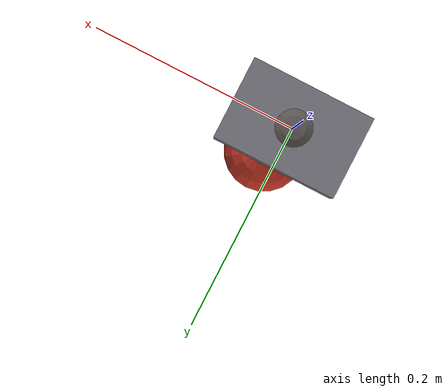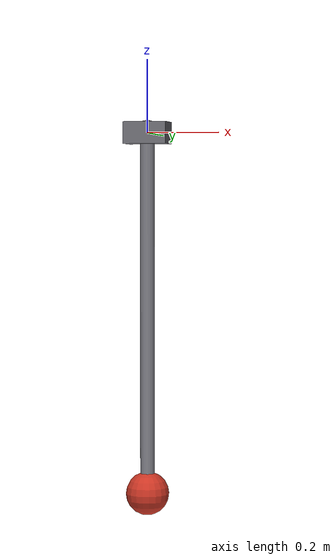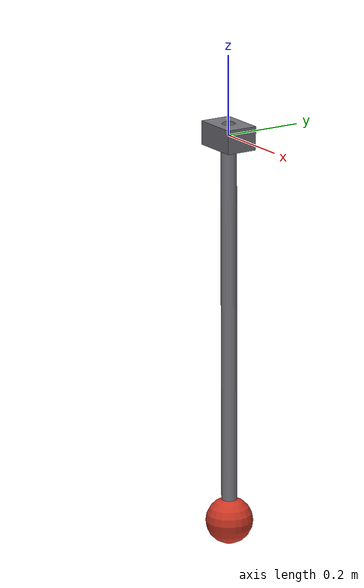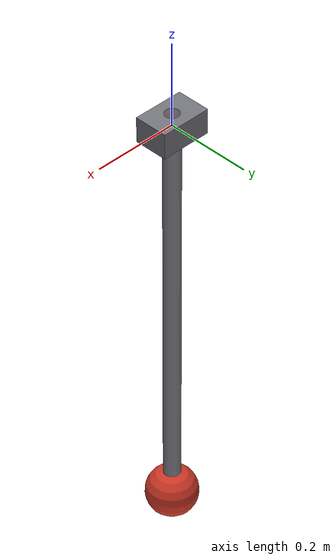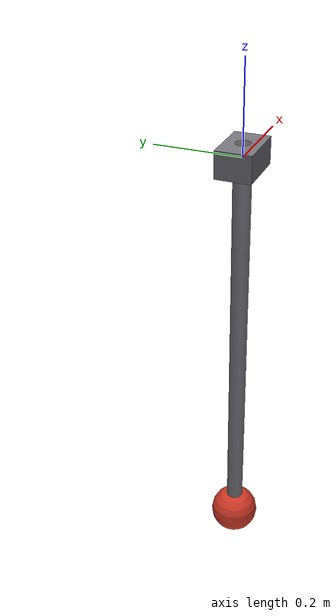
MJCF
<mujoco model="simple_pendulum">
    <compiler angle="radian"/>
    <option gravity="0 0 -9.81" timestep="0.001" integrator="RK4">
        <flag energy="enable"/>
    </option>

    <default>
        <geom contype="0" conaffinity="0"/>
    </default>

    <worldbody>
        <!-- Pivot bracket (visual) -->
        <geom name="bracket" type="box" size="0.06 0.04 0.03"
              pos="0 0 0" rgba="0.45 0.45 0.48 1"/>

        <!-- Pendulum arm -->
        <body name="arm" pos="0 0 0">
            <joint name="hinge" type="hinge" axis="0 1 0"
                   damping="0"/>
            <inertial pos="0 0 -1.0" mass="1.0" diaginertia="0.01 0.01 0.01"/>
            <geom name="socket" type="sphere" size="0.035"
                  pos="0 0 0" rgba="0.35 0.33 0.32 1"/>
            <geom name="rod" type="capsule" size="0.02"
                  fromto="0 0 0  0 0 -1.0" rgba="0.50 0.50 0.53 1"/>
            <geom name="mass" type="sphere" size="0.06"
                  pos="0 0 -1.0" rgba="0.82 0.22 0.15 1"/>
        </body>
    </worldbody>
</mujoco>
